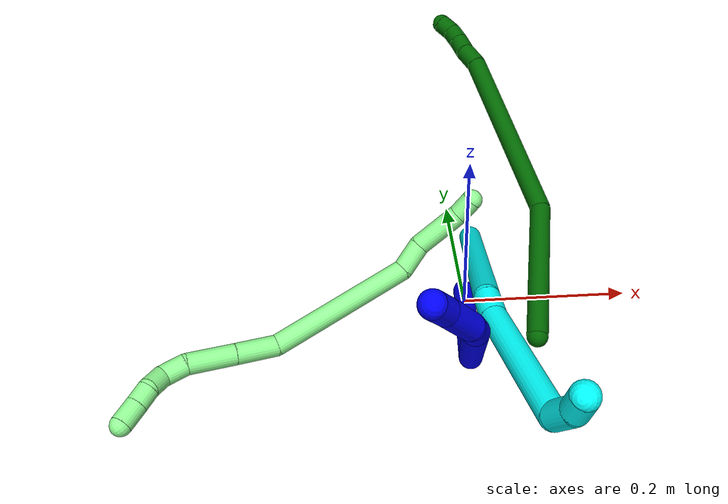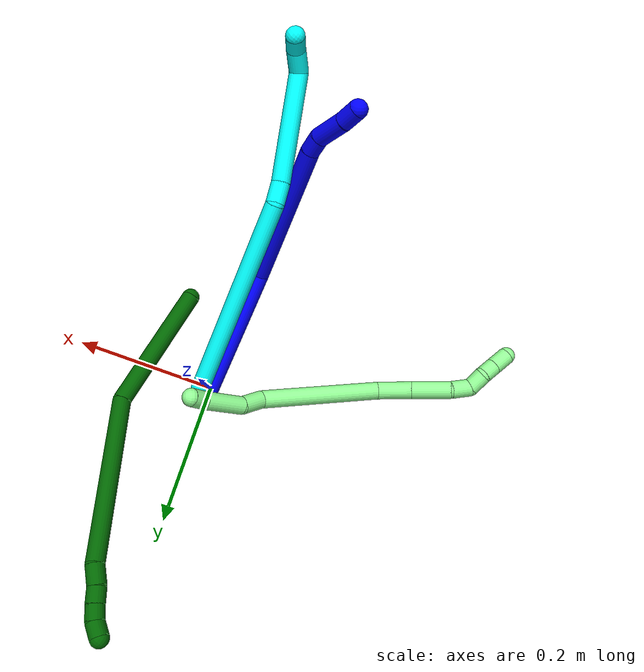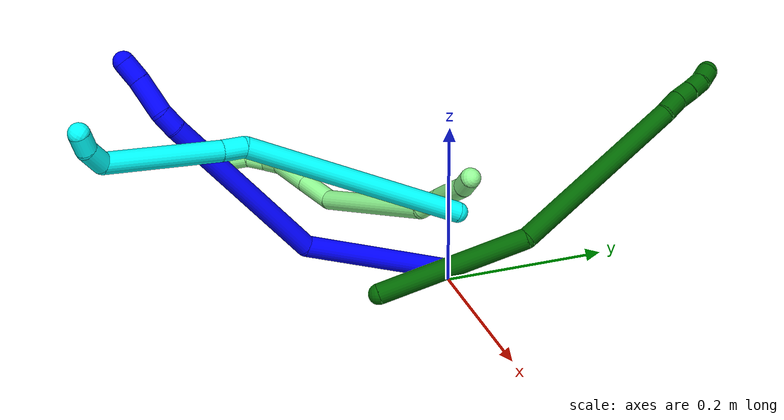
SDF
<sdf version="1.7">
 <world name="default">
  <model name="photoneo_s_sensor">
   <static>1</static>
   <pose>0 0 2 1.57079 1.57079 3.14159</pose>
   <link name="link">
    <inertial><mass>0.1</mass></inertial>
    <sensor name="sensor" type="depth">
     <update_rate>30</update_rate>
     <camera>
      <horizontal_fov>1.22</horizontal_fov>
      <image><width>1920</width><height>1200</height><format>B8G8R8</format></image>
      <clip><near>0.1</near><far>4</far></clip>
      <depth_camera><output>points</output></depth_camera>
     </camera>
     <plugin name="camera_plugin" filename="libgazebo_ros_depth_camera.so">
      <baseline>0.2</baseline>
      <alwaysOn>1</alwaysOn>
      <updateRate>0.0</updateRate>
      <cameraName>camera_ir</cameraName>
      <imageTopicName>/camera/color/image_raw</imageTopicName>
      <cameraInfoTopicName>/camera/color/camera_info</cameraInfoTopicName>
      <depthImageTopicName>/camera/depth/image_raw</depthImageTopicName>
      <depthImageCameraInfoTopicName>/camera/depth/camera_info</depthImageCameraInfoTopicName>
      <pointCloudTopicName>/camera/depth/points</pointCloudTopicName>
      <frameName>fr_optical</frameName>
      <pointCloudCutoff>0.1</pointCloudCutoff>
      <pointCloudCutoffMax>2.0</pointCloudCutoffMax>
      <distortionK1>0</distortionK1>
      <distortionK2>0</distortionK2>
      <distortionK3>0</distortionK3>
      <distortionT1>0</distortionT1>
      <distortionT2>0</distortionT2>
      <CxPrime>0</CxPrime>
      <Cx>0</Cx>
      <Cy>0</Cy>
      <focalLength>0</focalLength>
      <hackBaseline>0</hackBaseline>
     </plugin>
    </sensor>
   </link>
  </model>
  <model name="bin">
   <static>1</static>
   <link name="bottom">
    <collision name="collision-bottom">
     <pose>0 0 -0.01 0 -0 0</pose>
     <geometry><box><size>0.8 0.6 0.02</size></box></geometry>
     <surface>
      <friction><ode><mu>100</mu><mu2>100</mu2></ode></friction>
      <contact><collide_bitmask>65535</collide_bitmask></contact>
     </surface>
    </collision>
   </link>
   <link name="west_wall">
    <collision name="collision-west_wall">
     <pose>-0.41 0 0.1 0 -0 0</pose>
     <geometry><box><size>0.02 0.6 0.2</size></box></geometry>
     <surface>
      <friction><ode><mu>100</mu><mu2>100</mu2></ode></friction>
      <contact><collide_bitmask>65535</collide_bitmask></contact>
     </surface>
    </collision>
   </link>
   <link name="east_wall">
    <collision name="collision-east_wall">
     <pose>0.41 0 0.1 0 -0 0</pose>
     <geometry><box><size>0.02 0.6 0.2</size></box></geometry>
     <surface>
      <friction><ode><mu>100</mu><mu2>100</mu2></ode></friction>
      <contact><collide_bitmask>65535</collide_bitmask></contact>
     </surface>
    </collision>
   </link>
   <link name="south_wall">
    <collision name="collision-south_wall">
     <pose>0 -0.31 0.1 0 -0 0</pose>
     <geometry><box><size>0.8 0.02 0.2</size></box></geometry>
     <surface>
      <friction><ode><mu>100</mu><mu2>100</mu2></ode></friction>
      <contact><collide_bitmask>65535</collide_bitmask></contact>
     </surface>
    </collision>
   </link>
   <link name="north_wall">
    <collision name="collision-north_wall">
     <pose>0 0.31 0.1 0 -0 0</pose>
     <geometry><box><size>0.8 0.02 0.2</size></box></geometry>
     <surface>
      <friction><ode><mu>100</mu><mu2>100</mu2></ode></friction>
      <contact><collide_bitmask>65535</collide_bitmask></contact>
     </surface>
    </collision>
   </link>
  </model>
  <model name="1">
   <static>0</static>
   <link name="1">
    <collision name="collision-cylinder-e_1_1_4">
     <pose>0.006793 -0.052004 0.077959 0.588279 0.072358 0.021928</pose>
     <geometry><cylinder><radius>0.0125</radius><length>0.187915</length></cylinder></geometry>
     <surface>
      <friction><ode><mu>1.16</mu><mu2>1.16</mu2><slip1>0</slip1><slip2>0</slip2></ode></friction>
      <contact><ode><kp>1e+06</kp><kd>1</kd><max_vel>0</max_vel><min_depth>0.001</min_depth></ode></contact>
     </surface>
    </collision>
    <visual name="visual-cylinder-e_1_1_4">
     <pose>0.006793 -0.052004 0.077959 0.588279 0.072358 0.021928</pose>
     <geometry><cylinder><radius>0.0125</radius><length>0.187915</length></cylinder></geometry>
     <material><ambient>0 0 1 1</ambient></material>
    </visual>
    <collision name="collision-cylinder-e_2_4_5">
     <pose>-0.005313 -0.114356 0.262565 0.096741 -0.174581 -0.008473</pose>
     <geometry><cylinder><radius>0.0125</radius><length>0.217604</length></cylinder></geometry>
     <surface>
      <friction><ode><mu>1.16</mu><mu2>1.16</mu2><slip1>0</slip1><slip2>0</slip2></ode></friction>
      <contact><ode><kp>1e+06</kp><kd>1</kd><max_vel>0</max_vel><min_depth>0.001</min_depth></ode></contact>
     </surface>
    </collision>
    <visual name="visual-cylinder-e_2_4_5">
     <pose>-0.005313 -0.114356 0.262565 0.096741 -0.174581 -0.008473</pose>
     <geometry><cylinder><radius>0.0125</radius><length>0.217604</length></cylinder></geometry>
     <material><ambient>0 0 1 1</ambient></material>
    </visual>
    <collision name="collision-cylinder-e_3_5_6">
     <pose>-0.028391 -0.126108 0.380521 0.123359 -0.35153 -0.021935</pose>
     <geometry><cylinder><radius>0.0125</radius><length>0.024276</length></cylinder></geometry>
     <surface>
      <friction><ode><mu>1.16</mu><mu2>1.16</mu2><slip1>0</slip1><slip2>0</slip2></ode></friction>
      <contact><ode><kp>1e+06</kp><kd>1</kd><max_vel>0</max_vel><min_depth>0.001</min_depth></ode></contact>
     </surface>
    </collision>
    <visual name="visual-cylinder-e_3_5_6">
     <pose>-0.028391 -0.126108 0.380521 0.123359 -0.35153 -0.021935</pose>
     <geometry><cylinder><radius>0.0125</radius><length>0.024276</length></cylinder></geometry>
     <material><ambient>0 0 1 1</ambient></material>
    </visual>
    <collision name="collision-cylinder-e_4_6_7">
     <pose>-0.046533 -0.129997 0.408827 0.14528 -0.68249 -0.051674</pose>
     <geometry><cylinder><radius>0.0125</radius><length>0.044274</length></cylinder></geometry>
     <surface>
      <friction><ode><mu>1.16</mu><mu2>1.16</mu2><slip1>0</slip1><slip2>0</slip2></ode></friction>
      <contact><ode><kp>1e+06</kp><kd>1</kd><max_vel>0</max_vel><min_depth>0.001</min_depth></ode></contact>
     </surface>
    </collision>
    <visual name="visual-cylinder-e_4_6_7">
     <pose>-0.046533 -0.129997 0.408827 0.14528 -0.68249 -0.051674</pose>
     <geometry><cylinder><radius>0.0125</radius><length>0.044274</length></cylinder></geometry>
     <material><ambient>0 0 1 1</ambient></material>
    </visual>
    <collision name="collision-cylinder-e_5_7_2">
     <pose>-0.067414 -0.134625 0.436579 0.196512 -0.562894 -0.056984</pose>
     <geometry><cylinder><radius>0.0125</radius><length>0.02593</length></cylinder></geometry>
     <surface>
      <friction><ode><mu>1.16</mu><mu2>1.16</mu2><slip1>0</slip1><slip2>0</slip2></ode></friction>
      <contact><ode><kp>1e+06</kp><kd>1</kd><max_vel>0</max_vel><min_depth>0.001</min_depth></ode></contact>
     </surface>
    </collision>
    <visual name="visual-cylinder-e_5_7_2">
     <pose>-0.067414 -0.134625 0.436579 0.196512 -0.562894 -0.056984</pose>
     <geometry><cylinder><radius>0.0125</radius><length>0.02593</length></cylinder></geometry>
     <material><ambient>0 0 1 1</ambient></material>
    </visual>
    <collision name="collision-sphere-2">
     <pose>-0.074333 -0.136766 0.447332 0 -0 0</pose>
     <geometry><sphere><radius>0.0125</radius></sphere></geometry>
     <surface>
      <friction><ode><mu>1.16</mu><mu2>1.16</mu2><slip1>0</slip1><slip2>0</slip2></ode></friction>
      <contact><ode><kp>1e+06</kp><kd>1</kd><max_vel>0</max_vel><min_depth>0.001</min_depth></ode></contact>
     </surface>
    </collision>
    <visual name="visual-sphere-2">
     <pose>-0.074333 -0.136766 0.447332 0 -0 0</pose>
     <geometry><sphere><radius>0.0125</radius></sphere></geometry>
     <material><ambient>0 0 1 1</ambient></material>
    </visual>
    <collision name="collision-sphere-7">
     <pose>-0.060495 -0.132484 0.425825 0 -0 0</pose>
     <geometry><sphere><radius>0.0125</radius></sphere></geometry>
     <surface>
      <friction><ode><mu>1.16</mu><mu2>1.16</mu2><slip1>0</slip1><slip2>0</slip2></ode></friction>
      <contact><ode><kp>1e+06</kp><kd>1</kd><max_vel>0</max_vel><min_depth>0.001</min_depth></ode></contact>
     </surface>
    </collision>
    <visual name="visual-sphere-7">
     <pose>-0.060495 -0.132484 0.425825 0 -0 0</pose>
     <geometry><sphere><radius>0.0125</radius></sphere></geometry>
     <material><ambient>0 0 1 1</ambient></material>
    </visual>
    <collision name="collision-sphere-6">
     <pose>-0.03257 -0.12751 0.39183 0 -0 0</pose>
     <geometry><sphere><radius>0.0125</radius></sphere></geometry>
     <surface>
      <friction><ode><mu>1.16</mu><mu2>1.16</mu2><slip1>0</slip1><slip2>0</slip2></ode></friction>
      <contact><ode><kp>1e+06</kp><kd>1</kd><max_vel>0</max_vel><min_depth>0.001</min_depth></ode></contact>
     </surface>
    </collision>
    <visual name="visual-sphere-6">
     <pose>-0.03257 -0.12751 0.39183 0 -0 0</pose>
     <geometry><sphere><radius>0.0125</radius></sphere></geometry>
     <material><ambient>0 0 1 1</ambient></material>
    </visual>
    <collision name="collision-sphere-5">
     <pose>-0.024211 -0.124706 0.369212 0 -0 0</pose>
     <geometry><sphere><radius>0.0125</radius></sphere></geometry>
     <surface>
      <friction><ode><mu>1.16</mu><mu2>1.16</mu2><slip1>0</slip1><slip2>0</slip2></ode></friction>
      <contact><ode><kp>1e+06</kp><kd>1</kd><max_vel>0</max_vel><min_depth>0.001</min_depth></ode></contact>
     </surface>
    </collision>
    <visual name="visual-sphere-5">
     <pose>-0.024211 -0.124706 0.369212 0 -0 0</pose>
     <geometry><sphere><radius>0.0125</radius></sphere></geometry>
     <material><ambient>0 0 1 1</ambient></material>
    </visual>
    <collision name="collision-sphere-1">
     <geometry><sphere><radius>0.0125</radius></sphere></geometry>
     <surface>
      <friction><ode><mu>1.16</mu><mu2>1.16</mu2><slip1>0</slip1><slip2>0</slip2></ode></friction>
      <contact><ode><kp>1e+06</kp><kd>1</kd><max_vel>0</max_vel><min_depth>0.001</min_depth></ode></contact>
     </surface>
    </collision>
    <visual name="visual-sphere-1">
     <geometry><sphere><radius>0.0125</radius></sphere></geometry>
     <material><ambient>0 0 1 1</ambient></material>
    </visual>
    <collision name="collision-sphere-4">
     <pose>0.013585 -0.104007 0.155917 0 -0 0</pose>
     <geometry><sphere><radius>0.0125</radius></sphere></geometry>
     <surface>
      <friction><ode><mu>1.16</mu><mu2>1.16</mu2><slip1>0</slip1><slip2>0</slip2></ode></friction>
      <contact><ode><kp>1e+06</kp><kd>1</kd><max_vel>0</max_vel><min_depth>0.001</min_depth></ode></contact>
     </surface>
    </collision>
    <visual name="visual-sphere-4">
     <pose>0.013585 -0.104007 0.155917 0 -0 0</pose>
     <geometry><sphere><radius>0.0125</radius></sphere></geometry>
     <material><ambient>0 0 1 1</ambient></material>
    </visual>
    <inertial>
     <pose>-0.008754 -0.093929 0.220887 0 -0 0</pose>
     <mass>0.5</mass>
     <inertia>
      <ixx>0.001422</ixx>
      <ixy>0</ixy>
      <ixz>0</ixz>
      <iyy>0.001337</iyy>
      <iyz>0</iyz>
      <izz>0.000547</izz>
     </inertia>
    </inertial>
   </link>
   <pose>-0.000317 0.006662 0.011498 0.622474 0.361313 -0.297361</pose>
  </model>
  <model name="3">
   <static>0</static>
   <link name="3">
    <collision name="collision-cylinder-e_1_1_4">
     <pose>0.026061 0.042974 0.128202 -0.323432 0.190405 -0.031154</pose>
     <geometry><cylinder><radius>0.0125</radius><length>0.275403</length></cylinder></geometry>
     <surface>
      <friction><ode><mu>1.16</mu><mu2>1.16</mu2><slip1>0</slip1><slip2>0</slip2></ode></friction>
      <contact><ode><kp>1e+06</kp><kd>1</kd><max_vel>0</max_vel><min_depth>0.001</min_depth></ode></contact>
     </surface>
    </collision>
    <visual name="visual-cylinder-e_1_1_4">
     <pose>0.026061 0.042974 0.128202 -0.323432 0.190405 -0.031154</pose>
     <geometry><cylinder><radius>0.0125</radius><length>0.275403</length></cylinder></geometry>
     <material><ambient>0.003922 1 0.996078 1</ambient></material>
    </visual>
    <collision name="collision-cylinder-e_2_4_5">
     <pose>0.060298 0.091113 0.266778 -0.461949 0.614437 -0.148947</pose>
     <geometry><cylinder><radius>0.0125</radius><length>0.028366</length></cylinder></geometry>
     <surface>
      <friction><ode><mu>1.16</mu><mu2>1.16</mu2><slip1>0</slip1><slip2>0</slip2></ode></friction>
      <contact><ode><kp>1e+06</kp><kd>1</kd><max_vel>0</max_vel><min_depth>0.001</min_depth></ode></contact>
     </surface>
    </collision>
    <visual name="visual-cylinder-e_2_4_5">
     <pose>0.060298 0.091113 0.266778 -0.461949 0.614437 -0.148947</pose>
     <geometry><cylinder><radius>0.0125</radius><length>0.028366</length></cylinder></geometry>
     <material><ambient>0.003922 1 0.996078 1</ambient></material>
    </visual>
    <collision name="collision-cylinder-e_3_5_6">
     <pose>0.1027 0.130136 0.329233 -0.576461 0.503576 -0.152246</pose>
     <geometry><cylinder><radius>0.0125</radius><length>0.141847</length></cylinder></geometry>
     <surface>
      <friction><ode><mu>1.16</mu><mu2>1.16</mu2><slip1>0</slip1><slip2>0</slip2></ode></friction>
      <contact><ode><kp>1e+06</kp><kd>1</kd><max_vel>0</max_vel><min_depth>0.001</min_depth></ode></contact>
     </surface>
    </collision>
    <visual name="visual-cylinder-e_3_5_6">
     <pose>0.1027 0.130136 0.329233 -0.576461 0.503576 -0.152246</pose>
     <geometry><cylinder><radius>0.0125</radius><length>0.141847</length></cylinder></geometry>
     <material><ambient>0.003922 1 0.996078 1</ambient></material>
    </visual>
    <collision name="collision-cylinder-e_4_6_7">
     <pose>0.133023 0.174613 0.391987 -0.782764 -0.253568 0.105108</pose>
     <geometry><cylinder><radius>0.0125</radius><length>0.031105</length></cylinder></geometry>
     <surface>
      <friction><ode><mu>1.16</mu><mu2>1.16</mu2><slip1>0</slip1><slip2>0</slip2></ode></friction>
      <contact><ode><kp>1e+06</kp><kd>1</kd><max_vel>0</max_vel><min_depth>0.001</min_depth></ode></contact>
     </surface>
    </collision>
    <visual name="visual-cylinder-e_4_6_7">
     <pose>0.133023 0.174613 0.391987 -0.782764 -0.253568 0.105108</pose>
     <geometry><cylinder><radius>0.0125</radius><length>0.031105</length></cylinder></geometry>
     <material><ambient>0.003922 1 0.996078 1</ambient></material>
    </visual>
    <collision name="collision-cylinder-e_5_7_2">
     <pose>0.122534 0.191143 0.410219 -0.663917 -0.601619 0.213067</pose>
     <geometry><cylinder><radius>0.0125</radius><length>0.023279</length></cylinder></geometry>
     <surface>
      <friction><ode><mu>1.16</mu><mu2>1.16</mu2><slip1>0</slip1><slip2>0</slip2></ode></friction>
      <contact><ode><kp>1e+06</kp><kd>1</kd><max_vel>0</max_vel><min_depth>0.001</min_depth></ode></contact>
     </surface>
    </collision>
    <visual name="visual-cylinder-e_5_7_2">
     <pose>0.122534 0.191143 0.410219 -0.663917 -0.601619 0.213067</pose>
     <geometry><cylinder><radius>0.0125</radius><length>0.023279</length></cylinder></geometry>
     <material><ambient>0.003922 1 0.996078 1</ambient></material>
    </visual>
    <collision name="collision-sphere-2">
     <pose>0.115946 0.197056 0.417776 0 -0 0</pose>
     <geometry><sphere><radius>0.0125</radius></sphere></geometry>
     <surface>
      <friction><ode><mu>1.16</mu><mu2>1.16</mu2><slip1>0</slip1><slip2>0</slip2></ode></friction>
      <contact><ode><kp>1e+06</kp><kd>1</kd><max_vel>0</max_vel><min_depth>0.001</min_depth></ode></contact>
     </surface>
    </collision>
    <visual name="visual-sphere-2">
     <pose>0.115946 0.197056 0.417776 0 -0 0</pose>
     <geometry><sphere><radius>0.0125</radius></sphere></geometry>
     <material><ambient>0.003922 1 0.996078 1</ambient></material>
    </visual>
    <collision name="collision-sphere-7">
     <pose>0.129121 0.18523 0.402661 0 -0 0</pose>
     <geometry><sphere><radius>0.0125</radius></sphere></geometry>
     <surface>
      <friction><ode><mu>1.16</mu><mu2>1.16</mu2><slip1>0</slip1><slip2>0</slip2></ode></friction>
      <contact><ode><kp>1e+06</kp><kd>1</kd><max_vel>0</max_vel><min_depth>0.001</min_depth></ode></contact>
     </surface>
    </collision>
    <visual name="visual-sphere-7">
     <pose>0.129121 0.18523 0.402661 0 -0 0</pose>
     <geometry><sphere><radius>0.0125</radius></sphere></geometry>
     <material><ambient>0.003922 1 0.996078 1</ambient></material>
    </visual>
    <collision name="collision-sphere-6">
     <pose>0.136925 0.163995 0.381314 0 -0 0</pose>
     <geometry><sphere><radius>0.0125</radius></sphere></geometry>
     <surface>
      <friction><ode><mu>1.16</mu><mu2>1.16</mu2><slip1>0</slip1><slip2>0</slip2></ode></friction>
      <contact><ode><kp>1e+06</kp><kd>1</kd><max_vel>0</max_vel><min_depth>0.001</min_depth></ode></contact>
     </surface>
    </collision>
    <visual name="visual-sphere-6">
     <pose>0.136925 0.163995 0.381314 0 -0 0</pose>
     <geometry><sphere><radius>0.0125</radius></sphere></geometry>
     <material><ambient>0.003922 1 0.996078 1</ambient></material>
    </visual>
    <collision name="collision-sphere-5">
     <pose>0.068475 0.096278 0.277153 0 -0 0</pose>
     <geometry><sphere><radius>0.0125</radius></sphere></geometry>
     <surface>
      <friction><ode><mu>1.16</mu><mu2>1.16</mu2><slip1>0</slip1><slip2>0</slip2></ode></friction>
      <contact><ode><kp>1e+06</kp><kd>1</kd><max_vel>0</max_vel><min_depth>0.001</min_depth></ode></contact>
     </surface>
    </collision>
    <visual name="visual-sphere-5">
     <pose>0.068475 0.096278 0.277153 0 -0 0</pose>
     <geometry><sphere><radius>0.0125</radius></sphere></geometry>
     <material><ambient>0.003922 1 0.996078 1</ambient></material>
    </visual>
    <collision name="collision-sphere-1">
     <geometry><sphere><radius>0.0125</radius></sphere></geometry>
     <surface>
      <friction><ode><mu>1.16</mu><mu2>1.16</mu2><slip1>0</slip1><slip2>0</slip2></ode></friction>
      <contact><ode><kp>1e+06</kp><kd>1</kd><max_vel>0</max_vel><min_depth>0.001</min_depth></ode></contact>
     </surface>
    </collision>
    <visual name="visual-sphere-1">
     <geometry><sphere><radius>0.0125</radius></sphere></geometry>
     <material><ambient>0.003922 1 0.996078 1</ambient></material>
    </visual>
    <collision name="collision-sphere-4">
     <pose>0.052122 0.085947 0.256404 0 -0 0</pose>
     <geometry><sphere><radius>0.0125</radius></sphere></geometry>
     <surface>
      <friction><ode><mu>1.16</mu><mu2>1.16</mu2><slip1>0</slip1><slip2>0</slip2></ode></friction>
      <contact><ode><kp>1e+06</kp><kd>1</kd><max_vel>0</max_vel><min_depth>0.001</min_depth></ode></contact>
     </surface>
    </collision>
    <visual name="visual-sphere-4">
     <pose>0.052122 0.085947 0.256404 0 -0 0</pose>
     <geometry><sphere><radius>0.0125</radius></sphere></geometry>
     <material><ambient>0.003922 1 0.996078 1</ambient></material>
    </visual>
    <inertial>
     <pose>0.060891 0.08552 0.222635 0 -0 0</pose>
     <mass>0.5</mass>
     <inertia>
      <ixx>0.001861</ixx>
      <ixy>0</ixy>
      <ixz>0</ixz>
      <iyy>0.001811</iyy>
      <iyz>0</iyz>
      <izz>-0.001083</izz>
     </inertia>
    </inertial>
   </link>
   <pose>0.005 0.009006 0.092036 0.509426 0.93547 -1.45562</pose>
  </model>
  <model name="6">
   <static>0</static>
   <link name="6">
    <collision name="collision-cylinder-e_1_1_4">
     <pose>-0.010882 0.016856 0.088524 -0.188155 -0.120179 0.011353</pose>
     <geometry><cylinder><radius>0.0125</radius><length>0.181538</length></cylinder></geometry>
     <surface>
      <friction><ode><mu>1.16</mu><mu2>1.16</mu2><slip1>0</slip1><slip2>0</slip2></ode></friction>
      <contact><ode><kp>1e+06</kp><kd>1</kd><max_vel>0</max_vel><min_depth>0.001</min_depth></ode></contact>
     </surface>
    </collision>
    <visual name="visual-cylinder-e_1_1_4">
     <pose>-0.010882 0.016856 0.088524 -0.188155 -0.120179 0.011353</pose>
     <geometry><cylinder><radius>0.0125</radius><length>0.181538</length></cylinder></geometry>
     <material><ambient>0 0.392157 0.003922 1</ambient></material>
    </visual>
    <collision name="collision-cylinder-e_2_4_5">
     <pose>-0.028236 0.101797 0.269392 -0.635327 -0.056342 0.018529</pose>
     <geometry><cylinder><radius>0.0125</radius><length>0.229825</length></cylinder></geometry>
     <surface>
      <friction><ode><mu>1.16</mu><mu2>1.16</mu2><slip1>0</slip1><slip2>0</slip2></ode></friction>
      <contact><ode><kp>1e+06</kp><kd>1</kd><max_vel>0</max_vel><min_depth>0.001</min_depth></ode></contact>
     </surface>
    </collision>
    <visual name="visual-cylinder-e_2_4_5">
     <pose>-0.028236 0.101797 0.269392 -0.635327 -0.056342 0.018529</pose>
     <geometry><cylinder><radius>0.0125</radius><length>0.229825</length></cylinder></geometry>
     <material><ambient>0 0.392157 0.003922 1</ambient></material>
    </visual>
    <collision name="collision-cylinder-e_3_5_6">
     <pose>-0.032664 0.179473 0.371119 -0.79634 0.151068 -0.063644</pose>
     <geometry><cylinder><radius>0.0125</radius><length>0.027144</length></cylinder></geometry>
     <surface>
      <friction><ode><mu>1.16</mu><mu2>1.16</mu2><slip1>0</slip1><slip2>0</slip2></ode></friction>
      <contact><ode><kp>1e+06</kp><kd>1</kd><max_vel>0</max_vel><min_depth>0.001</min_depth></ode></contact>
     </surface>
    </collision>
    <visual name="visual-cylinder-e_3_5_6">
     <pose>-0.032664 0.179473 0.371119 -0.79634 0.151068 -0.063644</pose>
     <geometry><cylinder><radius>0.0125</radius><length>0.027144</length></cylinder></geometry>
     <material><ambient>0 0.392157 0.003922 1</ambient></material>
    </visual>
    <collision name="collision-cylinder-e_4_6_7">
     <pose>-0.029548 0.19506 0.389095 -0.609246 0.10213 -0.032136</pose>
     <geometry><cylinder><radius>0.0125</radius><length>0.021068</length></cylinder></geometry>
     <surface>
      <friction><ode><mu>1.16</mu><mu2>1.16</mu2><slip1>0</slip1><slip2>0</slip2></ode></friction>
      <contact><ode><kp>1e+06</kp><kd>1</kd><max_vel>0</max_vel><min_depth>0.001</min_depth></ode></contact>
     </surface>
    </collision>
    <visual name="visual-cylinder-e_4_6_7">
     <pose>-0.029548 0.19506 0.389095 -0.609246 0.10213 -0.032136</pose>
     <geometry><cylinder><radius>0.0125</radius><length>0.021068</length></cylinder></geometry>
     <material><ambient>0 0.392157 0.003922 1</ambient></material>
    </visual>
    <collision name="collision-cylinder-e_5_7_8">
     <pose>-0.027061 0.207402 0.405489 -0.682932 0.139622 -0.04969</pose>
     <geometry><cylinder><radius>0.0125</radius><length>0.020307</length></cylinder></geometry>
     <surface>
      <friction><ode><mu>1.16</mu><mu2>1.16</mu2><slip1>0</slip1><slip2>0</slip2></ode></friction>
      <contact><ode><kp>1e+06</kp><kd>1</kd><max_vel>0</max_vel><min_depth>0.001</min_depth></ode></contact>
     </surface>
    </collision>
    <visual name="visual-cylinder-e_5_7_8">
     <pose>-0.027061 0.207402 0.405489 -0.682932 0.139622 -0.04969</pose>
     <geometry><cylinder><radius>0.0125</radius><length>0.020307</length></cylinder></geometry>
     <material><ambient>0 0.392157 0.003922 1</ambient></material>
    </visual>
    <collision name="collision-cylinder-e_6_8_2">
     <pose>-0.02366 0.221887 0.418854 -0.971019 0.198946 -0.105221</pose>
     <geometry><cylinder><radius>0.0125</radius><length>0.020118</length></cylinder></geometry>
     <surface>
      <friction><ode><mu>1.16</mu><mu2>1.16</mu2><slip1>0</slip1><slip2>0</slip2></ode></friction>
      <contact><ode><kp>1e+06</kp><kd>1</kd><max_vel>0</max_vel><min_depth>0.001</min_depth></ode></contact>
     </surface>
    </collision>
    <visual name="visual-cylinder-e_6_8_2">
     <pose>-0.02366 0.221887 0.418854 -0.971019 0.198946 -0.105221</pose>
     <geometry><cylinder><radius>0.0125</radius><length>0.020118</length></cylinder></geometry>
     <material><ambient>0 0.392157 0.003922 1</ambient></material>
    </visual>
    <collision name="collision-sphere-2">
     <pose>-0.021672 0.230027 0.42442 0 -0 0</pose>
     <geometry><sphere><radius>0.0125</radius></sphere></geometry>
     <surface>
      <friction><ode><mu>1.16</mu><mu2>1.16</mu2><slip1>0</slip1><slip2>0</slip2></ode></friction>
      <contact><ode><kp>1e+06</kp><kd>1</kd><max_vel>0</max_vel><min_depth>0.001</min_depth></ode></contact>
     </surface>
    </collision>
    <visual name="visual-sphere-2">
     <pose>-0.021672 0.230027 0.42442 0 -0 0</pose>
     <geometry><sphere><radius>0.0125</radius></sphere></geometry>
     <material><ambient>0 0.392157 0.003922 1</ambient></material>
    </visual>
    <collision name="collision-sphere-4">
     <pose>-0.021765 0.033711 0.177048 0 -0 0</pose>
     <geometry><sphere><radius>0.0125</radius></sphere></geometry>
     <surface>
      <friction><ode><mu>1.16</mu><mu2>1.16</mu2><slip1>0</slip1><slip2>0</slip2></ode></friction>
      <contact><ode><kp>1e+06</kp><kd>1</kd><max_vel>0</max_vel><min_depth>0.001</min_depth></ode></contact>
     </surface>
    </collision>
    <visual name="visual-sphere-4">
     <pose>-0.021765 0.033711 0.177048 0 -0 0</pose>
     <geometry><sphere><radius>0.0125</radius></sphere></geometry>
     <material><ambient>0 0.392157 0.003922 1</ambient></material>
    </visual>
    <collision name="collision-sphere-1">
     <geometry><sphere><radius>0.0125</radius></sphere></geometry>
     <surface>
      <friction><ode><mu>1.16</mu><mu2>1.16</mu2><slip1>0</slip1><slip2>0</slip2></ode></friction>
      <contact><ode><kp>1e+06</kp><kd>1</kd><max_vel>0</max_vel><min_depth>0.001</min_depth></ode></contact>
     </surface>
    </collision>
    <visual name="visual-sphere-1">
     <geometry><sphere><radius>0.0125</radius></sphere></geometry>
     <material><ambient>0 0.392157 0.003922 1</ambient></material>
    </visual>
    <collision name="collision-sphere-8">
     <pose>-0.025648 0.213747 0.413288 0 -0 0</pose>
     <geometry><sphere><radius>0.0125</radius></sphere></geometry>
     <surface>
      <friction><ode><mu>1.16</mu><mu2>1.16</mu2><slip1>0</slip1><slip2>0</slip2></ode></friction>
      <contact><ode><kp>1e+06</kp><kd>1</kd><max_vel>0</max_vel><min_depth>0.001</min_depth></ode></contact>
     </surface>
    </collision>
    <visual name="visual-sphere-8">
     <pose>-0.025648 0.213747 0.413288 0 -0 0</pose>
     <geometry><sphere><radius>0.0125</radius></sphere></geometry>
     <material><ambient>0 0.392157 0.003922 1</ambient></material>
    </visual>
    <collision name="collision-sphere-5">
     <pose>-0.034707 0.169882 0.361736 0 -0 0</pose>
     <geometry><sphere><radius>0.0125</radius></sphere></geometry>
     <surface>
      <friction><ode><mu>1.16</mu><mu2>1.16</mu2><slip1>0</slip1><slip2>0</slip2></ode></friction>
      <contact><ode><kp>1e+06</kp><kd>1</kd><max_vel>0</max_vel><min_depth>0.001</min_depth></ode></contact>
     </surface>
    </collision>
    <visual name="visual-sphere-5">
     <pose>-0.034707 0.169882 0.361736 0 -0 0</pose>
     <geometry><sphere><radius>0.0125</radius></sphere></geometry>
     <material><ambient>0 0.392157 0.003922 1</ambient></material>
    </visual>
    <collision name="collision-sphere-6">
     <pose>-0.030622 0.189064 0.380502 0 -0 0</pose>
     <geometry><sphere><radius>0.0125</radius></sphere></geometry>
     <surface>
      <friction><ode><mu>1.16</mu><mu2>1.16</mu2><slip1>0</slip1><slip2>0</slip2></ode></friction>
      <contact><ode><kp>1e+06</kp><kd>1</kd><max_vel>0</max_vel><min_depth>0.001</min_depth></ode></contact>
     </surface>
    </collision>
    <visual name="visual-sphere-6">
     <pose>-0.030622 0.189064 0.380502 0 -0 0</pose>
     <geometry><sphere><radius>0.0125</radius></sphere></geometry>
     <material><ambient>0 0.392157 0.003922 1</ambient></material>
    </visual>
    <collision name="collision-sphere-7">
     <pose>-0.028474 0.201057 0.397689 0 -0 0</pose>
     <geometry><sphere><radius>0.0125</radius></sphere></geometry>
     <surface>
      <friction><ode><mu>1.16</mu><mu2>1.16</mu2><slip1>0</slip1><slip2>0</slip2></ode></friction>
      <contact><ode><kp>1e+06</kp><kd>1</kd><max_vel>0</max_vel><min_depth>0.001</min_depth></ode></contact>
     </surface>
    </collision>
    <visual name="visual-sphere-7">
     <pose>-0.028474 0.201057 0.397689 0 -0 0</pose>
     <geometry><sphere><radius>0.0125</radius></sphere></geometry>
     <material><ambient>0 0.392157 0.003922 1</ambient></material>
    </visual>
    <inertial>
     <pose>-0.021999 0.088224 0.22583 0 -0 0</pose>
     <mass>0.5</mass>
     <inertia>
      <ixx>0.00155</ixx>
      <ixy>0</ixy>
      <ixz>0</ixz>
      <iyy>0.001366</iyy>
      <iyz>0</iyz>
      <izz>-0.000553</izz>
     </inertia>
    </inertial>
   </link>
   <pose>0.067971 -0.111677 0.037867 1.33206 1.02612 2.64938</pose>
  </model>
  <model name="13">
   <static>0</static>
   <link name="13">
    <collision name="collision-cylinder-e_1_1_4">
     <pose>0.00312 0.003314 0.011463 -0.281387 0.255742 -0.036415</pose>
     <geometry><cylinder><radius>0.0125</radius><length>0.024667</length></cylinder></geometry>
     <surface>
      <friction><ode><mu>1.16</mu><mu2>1.16</mu2><slip1>0</slip1><slip2>0</slip2></ode></friction>
      <contact><ode><kp>1e+06</kp><kd>1</kd><max_vel>0</max_vel><min_depth>0.001</min_depth></ode></contact>
     </surface>
    </collision>
    <visual name="visual-cylinder-e_1_1_4">
     <pose>0.00312 0.003314 0.011463 -0.281387 0.255742 -0.036415</pose>
     <geometry><cylinder><radius>0.0125</radius><length>0.024667</length></cylinder></geometry>
     <material><ambient>0.564706 0.984314 0.572549 1</ambient></material>
    </visual>
    <collision name="collision-cylinder-e_2_4_5">
     <pose>0.009534 0.009023 0.052513 -0.080816 0.110511 -0.004473</pose>
     <geometry><cylinder><radius>0.0125</radius><length>0.05973</length></cylinder></geometry>
     <surface>
      <friction><ode><mu>1.16</mu><mu2>1.16</mu2><slip1>0</slip1><slip2>0</slip2></ode></friction>
      <contact><ode><kp>1e+06</kp><kd>1</kd><max_vel>0</max_vel><min_depth>0.001</min_depth></ode></contact>
     </surface>
    </collision>
    <visual name="visual-cylinder-e_2_4_5">
     <pose>0.009534 0.009023 0.052513 -0.080816 0.110511 -0.004473</pose>
     <geometry><cylinder><radius>0.0125</radius><length>0.05973</length></cylinder></geometry>
     <material><ambient>0.564706 0.984314 0.572549 1</ambient></material>
    </visual>
    <collision name="collision-cylinder-e_3_5_6">
     <pose>0.009967 0.017007 0.098627 -0.325994 -0.16251 0.026783</pose>
     <geometry><cylinder><radius>0.0125</radius><length>0.03536</length></cylinder></geometry>
     <surface>
      <friction><ode><mu>1.16</mu><mu2>1.16</mu2><slip1>0</slip1><slip2>0</slip2></ode></friction>
      <contact><ode><kp>1e+06</kp><kd>1</kd><max_vel>0</max_vel><min_depth>0.001</min_depth></ode></contact>
     </surface>
    </collision>
    <visual name="visual-cylinder-e_3_5_6">
     <pose>0.009967 0.017007 0.098627 -0.325994 -0.16251 0.026783</pose>
     <geometry><cylinder><radius>0.0125</radius><length>0.03536</length></cylinder></geometry>
     <material><ambient>0.564706 0.984314 0.572549 1</ambient></material>
    </visual>
    <collision name="collision-cylinder-e_4_6_7">
     <pose>-0.010435 0.010454 0.199026 0.143751 -0.204112 -0.014747</pose>
     <geometry><cylinder><radius>0.0125</radius><length>0.173083</length></cylinder></geometry>
     <surface>
      <friction><ode><mu>1.16</mu><mu2>1.16</mu2><slip1>0</slip1><slip2>0</slip2></ode></friction>
      <contact><ode><kp>1e+06</kp><kd>1</kd><max_vel>0</max_vel><min_depth>0.001</min_depth></ode></contact>
     </surface>
    </collision>
    <visual name="visual-cylinder-e_4_6_7">
     <pose>-0.010435 0.010454 0.199026 0.143751 -0.204112 -0.014747</pose>
     <geometry><cylinder><radius>0.0125</radius><length>0.173083</length></cylinder></geometry>
     <material><ambient>0.564706 0.984314 0.572549 1</ambient></material>
    </visual>
    <collision name="collision-cylinder-e_5_7_8">
     <pose>-0.035151 -0.013716 0.303101 0.537041 -0.296101 -0.082031</pose>
     <geometry><cylinder><radius>0.0125</radius><length>0.049167</length></cylinder></geometry>
     <surface>
      <friction><ode><mu>1.16</mu><mu2>1.16</mu2><slip1>0</slip1><slip2>0</slip2></ode></friction>
      <contact><ode><kp>1e+06</kp><kd>1</kd><max_vel>0</max_vel><min_depth>0.001</min_depth></ode></contact>
     </surface>
    </collision>
    <visual name="visual-cylinder-e_5_7_8">
     <pose>-0.035151 -0.013716 0.303101 0.537041 -0.296101 -0.082031</pose>
     <geometry><cylinder><radius>0.0125</radius><length>0.049167</length></cylinder></geometry>
     <material><ambient>0.564706 0.984314 0.572549 1</ambient></material>
    </visual>
    <collision name="collision-cylinder-e_6_8_9">
     <pose>-0.05018 -0.039565 0.346331 0.540555 -0.284594 -0.079344</pose>
     <geometry><cylinder><radius>0.0125</radius><length>0.055963</length></cylinder></geometry>
     <surface>
      <friction><ode><mu>1.16</mu><mu2>1.16</mu2><slip1>0</slip1><slip2>0</slip2></ode></friction>
      <contact><ode><kp>1e+06</kp><kd>1</kd><max_vel>0</max_vel><min_depth>0.001</min_depth></ode></contact>
     </surface>
    </collision>
    <visual name="visual-cylinder-e_6_8_9">
     <pose>-0.05018 -0.039565 0.346331 0.540555 -0.284594 -0.079344</pose>
     <geometry><cylinder><radius>0.0125</radius><length>0.055963</length></cylinder></geometry>
     <material><ambient>0.564706 0.984314 0.572549 1</ambient></material>
    </visual>
    <collision name="collision-cylinder-e_7_9_10">
     <pose>-0.0623 -0.05665 0.382643 0.240944 -0.302093 -0.036847</pose>
     <geometry><cylinder><radius>0.0125</radius><length>0.028658</length></cylinder></geometry>
     <surface>
      <friction><ode><mu>1.16</mu><mu2>1.16</mu2><slip1>0</slip1><slip2>0</slip2></ode></friction>
      <contact><ode><kp>1e+06</kp><kd>1</kd><max_vel>0</max_vel><min_depth>0.001</min_depth></ode></contact>
     </surface>
    </collision>
    <visual name="visual-cylinder-e_7_9_10">
     <pose>-0.0623 -0.05665 0.382643 0.240944 -0.302093 -0.036847</pose>
     <geometry><cylinder><radius>0.0125</radius><length>0.028658</length></cylinder></geometry>
     <material><ambient>0.564706 0.984314 0.572549 1</ambient></material>
    </visual>
    <collision name="collision-cylinder-e_8_10_11">
     <pose>-0.077348 -0.061369 0.402494 0.217981 -1.01327 -0.121301</pose>
     <geometry><cylinder><radius>0.0125</radius><length>0.025421</length></cylinder></geometry>
     <surface>
      <friction><ode><mu>1.16</mu><mu2>1.16</mu2><slip1>0</slip1><slip2>0</slip2></ode></friction>
      <contact><ode><kp>1e+06</kp><kd>1</kd><max_vel>0</max_vel><min_depth>0.001</min_depth></ode></contact>
     </surface>
    </collision>
    <visual name="visual-cylinder-e_8_10_11">
     <pose>-0.077348 -0.061369 0.402494 0.217981 -1.01327 -0.121301</pose>
     <geometry><cylinder><radius>0.0125</radius><length>0.025421</length></cylinder></geometry>
     <material><ambient>0.564706 0.984314 0.572549 1</ambient></material>
    </visual>
    <collision name="collision-cylinder-e_9_11_12">
     <pose>-0.09463 -0.060977 0.417305 -0.220318 -0.655389 0.075167</pose>
     <geometry><cylinder><radius>0.0125</radius><length>0.021316</length></cylinder></geometry>
     <surface>
      <friction><ode><mu>1.16</mu><mu2>1.16</mu2><slip1>0</slip1><slip2>0</slip2></ode></friction>
      <contact><ode><kp>1e+06</kp><kd>1</kd><max_vel>0</max_vel><min_depth>0.001</min_depth></ode></contact>
     </surface>
    </collision>
    <visual name="visual-cylinder-e_9_11_12">
     <pose>-0.09463 -0.060977 0.417305 -0.220318 -0.655389 0.075167</pose>
     <geometry><cylinder><radius>0.0125</radius><length>0.021316</length></cylinder></geometry>
     <material><ambient>0.564706 0.984314 0.572549 1</ambient></material>
    </visual>
    <collision name="collision-cylinder-e_10_12_2">
     <pose>-0.109547 -0.05725 0.435694 -0.18325 -0.684572 0.065454</pose>
     <geometry><cylinder><radius>0.0125</radius><length>0.026634</length></cylinder></geometry>
     <surface>
      <friction><ode><mu>1.16</mu><mu2>1.16</mu2><slip1>0</slip1><slip2>0</slip2></ode></friction>
      <contact><ode><kp>1e+06</kp><kd>1</kd><max_vel>0</max_vel><min_depth>0.001</min_depth></ode></contact>
     </surface>
    </collision>
    <visual name="visual-cylinder-e_10_12_2">
     <pose>-0.109547 -0.05725 0.435694 -0.18325 -0.684572 0.065454</pose>
     <geometry><cylinder><radius>0.0125</radius><length>0.026634</length></cylinder></geometry>
     <material><ambient>0.564706 0.984314 0.572549 1</ambient></material>
    </visual>
    <collision name="collision-sphere-2">
     <pose>-0.117968 -0.05537 0.445838 0 -0 0</pose>
     <geometry><sphere><radius>0.0125</radius></sphere></geometry>
     <surface>
      <friction><ode><mu>1.16</mu><mu2>1.16</mu2><slip1>0</slip1><slip2>0</slip2></ode></friction>
      <contact><ode><kp>1e+06</kp><kd>1</kd><max_vel>0</max_vel><min_depth>0.001</min_depth></ode></contact>
     </surface>
    </collision>
    <visual name="visual-sphere-2">
     <pose>-0.117968 -0.05537 0.445838 0 -0 0</pose>
     <geometry><sphere><radius>0.0125</radius></sphere></geometry>
     <material><ambient>0.564706 0.984314 0.572549 1</ambient></material>
    </visual>
    <collision name="collision-sphere-12">
     <pose>-0.101126 -0.05913 0.425551 0 -0 0</pose>
     <geometry><sphere><radius>0.0125</radius></sphere></geometry>
     <surface>
      <friction><ode><mu>1.16</mu><mu2>1.16</mu2><slip1>0</slip1><slip2>0</slip2></ode></friction>
      <contact><ode><kp>1e+06</kp><kd>1</kd><max_vel>0</max_vel><min_depth>0.001</min_depth></ode></contact>
     </surface>
    </collision>
    <visual name="visual-sphere-12">
     <pose>-0.101126 -0.05913 0.425551 0 -0 0</pose>
     <geometry><sphere><radius>0.0125</radius></sphere></geometry>
     <material><ambient>0.564706 0.984314 0.572549 1</ambient></material>
    </visual>
    <collision name="collision-sphere-11">
     <pose>-0.088134 -0.062823 0.409059 0 -0 0</pose>
     <geometry><sphere><radius>0.0125</radius></sphere></geometry>
     <surface>
      <friction><ode><mu>1.16</mu><mu2>1.16</mu2><slip1>0</slip1><slip2>0</slip2></ode></friction>
      <contact><ode><kp>1e+06</kp><kd>1</kd><max_vel>0</max_vel><min_depth>0.001</min_depth></ode></contact>
     </surface>
    </collision>
    <visual name="visual-sphere-11">
     <pose>-0.088134 -0.062823 0.409059 0 -0 0</pose>
     <geometry><sphere><radius>0.0125</radius></sphere></geometry>
     <material><ambient>0.564706 0.984314 0.572549 1</ambient></material>
    </visual>
    <collision name="collision-sphere-10">
     <pose>-0.066563 -0.059915 0.395928 0 -0 0</pose>
     <geometry><sphere><radius>0.0125</radius></sphere></geometry>
     <surface>
      <friction><ode><mu>1.16</mu><mu2>1.16</mu2><slip1>0</slip1><slip2>0</slip2></ode></friction>
      <contact><ode><kp>1e+06</kp><kd>1</kd><max_vel>0</max_vel><min_depth>0.001</min_depth></ode></contact>
     </surface>
    </collision>
    <visual name="visual-sphere-10">
     <pose>-0.066563 -0.059915 0.395928 0 -0 0</pose>
     <geometry><sphere><radius>0.0125</radius></sphere></geometry>
     <material><ambient>0.564706 0.984314 0.572549 1</ambient></material>
    </visual>
    <collision name="collision-sphere-9">
     <pose>-0.058036 -0.053386 0.369358 0 -0 0</pose>
     <geometry><sphere><radius>0.0125</radius></sphere></geometry>
     <surface>
      <friction><ode><mu>1.16</mu><mu2>1.16</mu2><slip1>0</slip1><slip2>0</slip2></ode></friction>
      <contact><ode><kp>1e+06</kp><kd>1</kd><max_vel>0</max_vel><min_depth>0.001</min_depth></ode></contact>
     </surface>
    </collision>
    <visual name="visual-sphere-9">
     <pose>-0.058036 -0.053386 0.369358 0 -0 0</pose>
     <geometry><sphere><radius>0.0125</radius></sphere></geometry>
     <material><ambient>0.564706 0.984314 0.572549 1</ambient></material>
    </visual>
    <collision name="collision-sphere-4">
     <pose>0.00624 0.006627 0.022927 0 -0 0</pose>
     <geometry><sphere><radius>0.0125</radius></sphere></geometry>
     <surface>
      <friction><ode><mu>1.16</mu><mu2>1.16</mu2><slip1>0</slip1><slip2>0</slip2></ode></friction>
      <contact><ode><kp>1e+06</kp><kd>1</kd><max_vel>0</max_vel><min_depth>0.001</min_depth></ode></contact>
     </surface>
    </collision>
    <visual name="visual-sphere-4">
     <pose>0.00624 0.006627 0.022927 0 -0 0</pose>
     <geometry><sphere><radius>0.0125</radius></sphere></geometry>
     <material><ambient>0.564706 0.984314 0.572549 1</ambient></material>
    </visual>
    <collision name="collision-sphere-1">
     <geometry><sphere><radius>0.0125</radius></sphere></geometry>
     <surface>
      <friction><ode><mu>1.16</mu><mu2>1.16</mu2><slip1>0</slip1><slip2>0</slip2></ode></friction>
      <contact><ode><kp>1e+06</kp><kd>1</kd><max_vel>0</max_vel><min_depth>0.001</min_depth></ode></contact>
     </surface>
    </collision>
    <visual name="visual-sphere-1">
     <geometry><sphere><radius>0.0125</radius></sphere></geometry>
     <material><ambient>0.564706 0.984314 0.572549 1</ambient></material>
    </visual>
    <collision name="collision-sphere-8">
     <pose>-0.042324 -0.025745 0.323304 0 -0 0</pose>
     <geometry><sphere><radius>0.0125</radius></sphere></geometry>
     <surface>
      <friction><ode><mu>1.16</mu><mu2>1.16</mu2><slip1>0</slip1><slip2>0</slip2></ode></friction>
      <contact><ode><kp>1e+06</kp><kd>1</kd><max_vel>0</max_vel><min_depth>0.001</min_depth></ode></contact>
     </surface>
    </collision>
    <visual name="visual-sphere-8">
     <pose>-0.042324 -0.025745 0.323304 0 -0 0</pose>
     <geometry><sphere><radius>0.0125</radius></sphere></geometry>
     <material><ambient>0.564706 0.984314 0.572549 1</ambient></material>
    </visual>
    <collision name="collision-sphere-5">
     <pose>0.012827 0.01142 0.082099 0 -0 0</pose>
     <geometry><sphere><radius>0.0125</radius></sphere></geometry>
     <surface>
      <friction><ode><mu>1.16</mu><mu2>1.16</mu2><slip1>0</slip1><slip2>0</slip2></ode></friction>
      <contact><ode><kp>1e+06</kp><kd>1</kd><max_vel>0</max_vel><min_depth>0.001</min_depth></ode></contact>
     </surface>
    </collision>
    <visual name="visual-sphere-5">
     <pose>0.012827 0.01142 0.082099 0 -0 0</pose>
     <geometry><sphere><radius>0.0125</radius></sphere></geometry>
     <material><ambient>0.564706 0.984314 0.572549 1</ambient></material>
    </visual>
    <collision name="collision-sphere-6">
     <pose>0.007106 0.022594 0.115155 0 -0 0</pose>
     <geometry><sphere><radius>0.0125</radius></sphere></geometry>
     <surface>
      <friction><ode><mu>1.16</mu><mu2>1.16</mu2><slip1>0</slip1><slip2>0</slip2></ode></friction>
      <contact><ode><kp>1e+06</kp><kd>1</kd><max_vel>0</max_vel><min_depth>0.001</min_depth></ode></contact>
     </surface>
    </collision>
    <visual name="visual-sphere-6">
     <pose>0.007106 0.022594 0.115155 0 -0 0</pose>
     <geometry><sphere><radius>0.0125</radius></sphere></geometry>
     <material><ambient>0.564706 0.984314 0.572549 1</ambient></material>
    </visual>
    <collision name="collision-sphere-7">
     <pose>-0.027977 -0.001686 0.282897 0 -0 0</pose>
     <geometry><sphere><radius>0.0125</radius></sphere></geometry>
     <surface>
      <friction><ode><mu>1.16</mu><mu2>1.16</mu2><slip1>0</slip1><slip2>0</slip2></ode></friction>
      <contact><ode><kp>1e+06</kp><kd>1</kd><max_vel>0</max_vel><min_depth>0.001</min_depth></ode></contact>
     </surface>
    </collision>
    <visual name="visual-sphere-7">
     <pose>-0.027977 -0.001686 0.282897 0 -0 0</pose>
     <geometry><sphere><radius>0.0125</radius></sphere></geometry>
     <material><ambient>0.564706 0.984314 0.572549 1</ambient></material>
    </visual>
    <inertial>
     <pose>-0.028061 -0.01173 0.234673 0 -0 0</pose>
     <mass>0.5</mass>
     <inertia>
      <ixx>0.000474</ixx>
      <ixy>0</ixy>
      <ixz>0</ixz>
      <iyy>0.000483</iyy>
      <iyz>0</iyz>
      <izz>0.000208</izz>
     </inertia>
    </inertial>
   </link>
   <pose>0.007596 0.023826 0.135303 -2.11974 0.405607 1.64036</pose>
  </model>
 </world>
</sdf>
